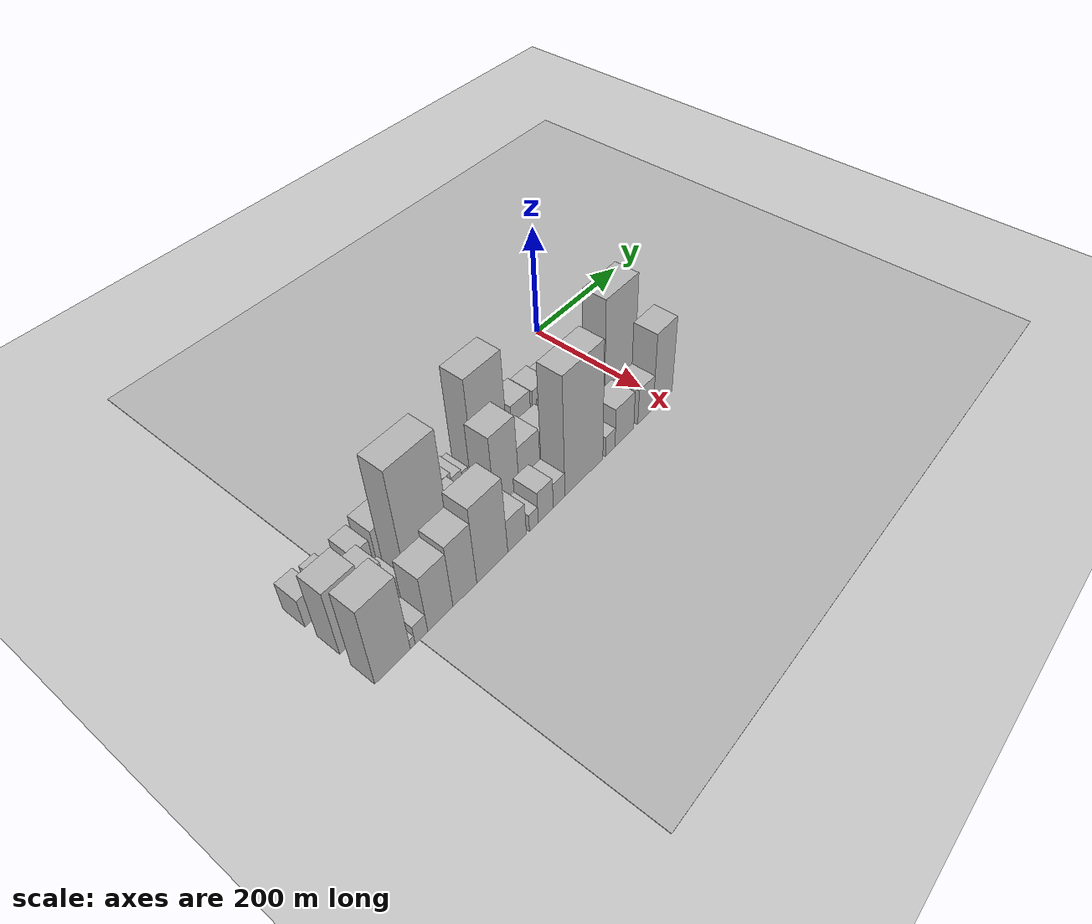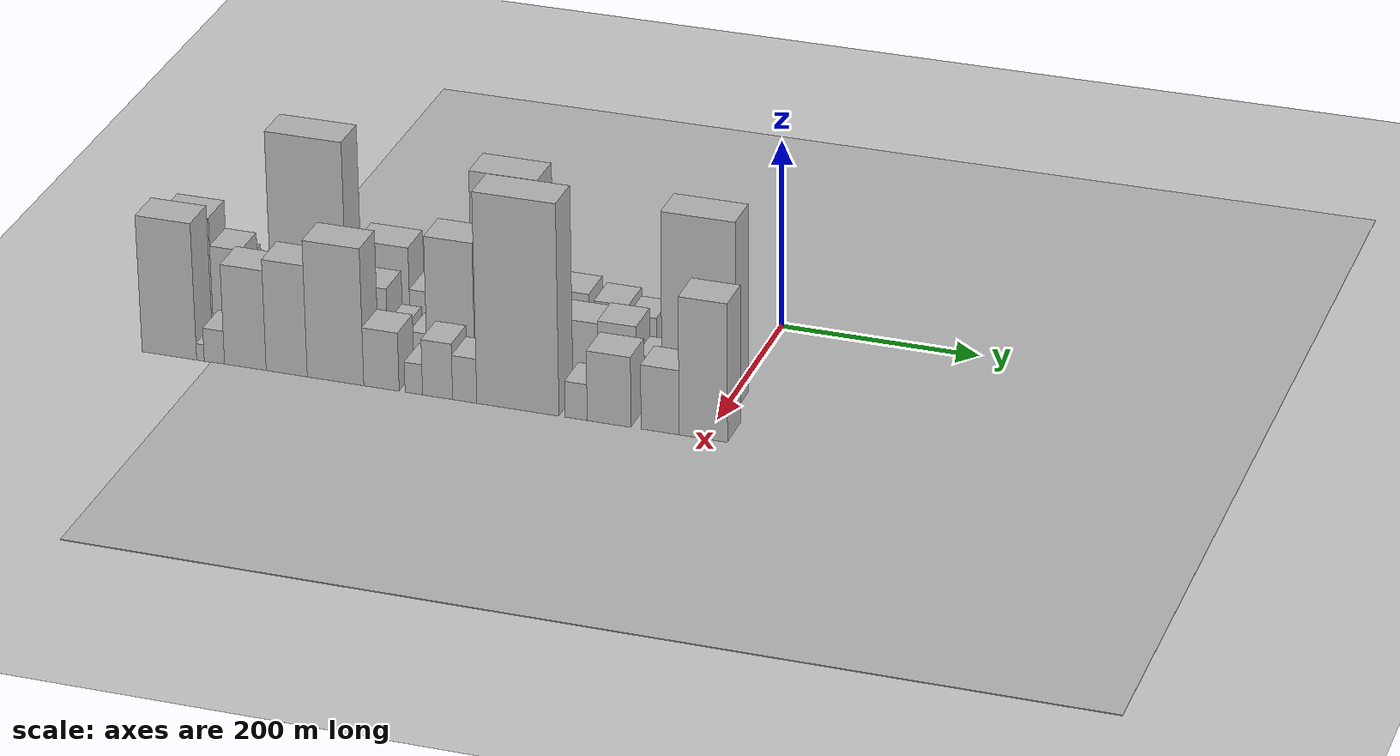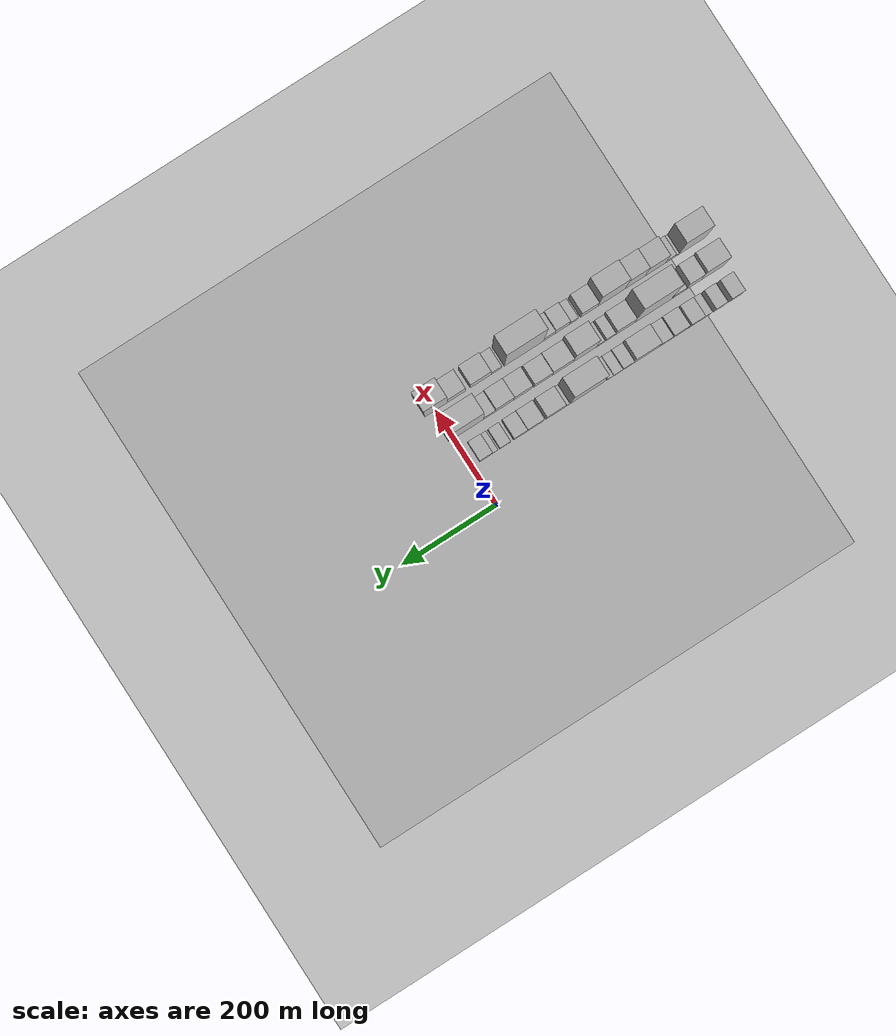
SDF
<sdf version="1.6">
 <world name="default">
  <include><name>ground_plane_1</name><uri>model://HANNAS_ground_plane</uri></include>
  <include>
   <name>ground_plane_2</name>
   <uri>model://HANNAS_ground_plane</uri>
   <pose>100 0 0  0 0 0</pose>
  </include>
  <model name="building_1">
   <static>1</static>
   <pose>100.0000 -558.0019 0 0.000000 0.000000 0.000000</pose>
   <link name="link">
    <pose>0 0 27.00 0 0 0</pose>
    <collision name="collision"><geometry><box><size>40.0000 27.9962 54.0000</size></box></geometry></collision>
    <visual name="visual">
     <cast_shadows>0</cast_shadows>
     <geometry><box><size>40.0000 27.9962 54.0000</size></box></geometry>
     <material>
      <script>
       <uri>model://HANNAS_wall/materials/scripts</uri>
       <uri>model://HANNAS_wall/materials/textures</uri>
       <name>vrc/HANNAS_wall</name>
      </script>
     </material>
    </visual>
   </link>
  </model>
  <model name="building_2">
   <static>1</static>
   <pose>100.0000 -523.8608 0 0.000000 0.000000 0.000000</pose>
   <link name="link">
    <pose>0 0 24.00 0 0 0</pose>
    <collision name="collision"><geometry><box><size>40.0000 24.2860 48.0000</size></box></geometry></collision>
    <visual name="visual">
     <cast_shadows>0</cast_shadows>
     <geometry><box><size>40.0000 24.2860 48.0000</size></box></geometry>
     <material>
      <script>
       <uri>model://HANNAS_wall/materials/scripts</uri>
       <uri>model://HANNAS_wall/materials/textures</uri>
       <name>vrc/HANNAS_wall</name>
      </script>
     </material>
    </visual>
   </link>
  </model>
  <model name="building_3">
   <static>1</static>
   <pose>100.0000 -497.3234 0 0.000000 0.000000 0.000000</pose>
   <link name="link">
    <pose>0 0 16.50 0 0 0</pose>
    <collision name="collision"><geometry><box><size>40.0000 16.7890 33.0000</size></box></geometry></collision>
    <visual name="visual">
     <cast_shadows>0</cast_shadows>
     <geometry><box><size>40.0000 16.7890 33.0000</size></box></geometry>
     <material>
      <script>
       <uri>model://HANNAS_wall/materials/scripts</uri>
       <uri>model://HANNAS_wall/materials/textures</uri>
       <name>vrc/HANNAS_wall</name>
      </script>
     </material>
    </visual>
   </link>
  </model>
  <model name="building_4">
   <static>1</static>
   <pose>100.0000 -474.6783 0 0.000000 0.000000 0.000000</pose>
   <link name="link">
    <pose>0 0 25.50 0 0 0</pose>
    <collision name="collision"><geometry><box><size>40.0000 28.5010 51.0000</size></box></geometry></collision>
    <visual name="visual">
     <cast_shadows>0</cast_shadows>
     <geometry><box><size>40.0000 28.5010 51.0000</size></box></geometry>
     <material>
      <script>
       <uri>model://HANNAS_wall/materials/scripts</uri>
       <uri>model://HANNAS_wall/materials/textures</uri>
       <name>vrc/HANNAS_wall</name>
      </script>
     </material>
    </visual>
   </link>
  </model>
  <model name="building_5">
   <static>1</static>
   <pose>100.0000 -438.8841 0 0.000000 0.000000 0.000000</pose>
   <link name="link">
    <pose>0 0 31.50 0 0 0</pose>
    <collision name="collision"><geometry><box><size>40.0000 33.0875 63.0000</size></box></geometry></collision>
    <visual name="visual">
     <cast_shadows>0</cast_shadows>
     <geometry><box><size>40.0000 33.0875 63.0000</size></box></geometry>
     <material>
      <script>
       <uri>model://HANNAS_wall/materials/scripts</uri>
       <uri>model://HANNAS_wall/materials/textures</uri>
       <name>vrc/HANNAS_wall</name>
      </script>
     </material>
    </visual>
   </link>
  </model>
  <model name="building_6">
   <static>1</static>
   <pose>100.0000 -408.1292 0 0.000000 0.000000 0.000000</pose>
   <link name="link">
    <pose>0 0 24.00 0 0 0</pose>
    <collision name="collision"><geometry><box><size>40.0000 28.4222 48.0000</size></box></geometry></collision>
    <visual name="visual">
     <cast_shadows>0</cast_shadows>
     <geometry><box><size>40.0000 28.4222 48.0000</size></box></geometry>
     <material>
      <script>
       <uri>model://HANNAS_wall/materials/scripts</uri>
       <uri>model://HANNAS_wall/materials/textures</uri>
       <name>vrc/HANNAS_wall</name>
      </script>
     </material>
    </visual>
   </link>
  </model>
  <model name="building_7">
   <static>1</static>
   <pose>100.0000 -367.4605 0 0.000000 0.000000 0.000000</pose>
   <link name="link">
    <pose>0 0 45.00 0 0 0</pose>
    <collision name="collision"><geometry><box><size>40.0000 52.9153 90.0000</size></box></geometry></collision>
    <visual name="visual">
     <cast_shadows>0</cast_shadows>
     <geometry><box><size>40.0000 52.9153 90.0000</size></box></geometry>
     <material>
      <script>
       <uri>model://HANNAS_wall/materials/scripts</uri>
       <uri>model://HANNAS_wall/materials/textures</uri>
       <name>vrc/HANNAS_wall</name>
      </script>
     </material>
    </visual>
   </link>
  </model>
  <model name="building_8">
   <static>1</static>
   <pose>100.0000 -329.2412 0 0.000000 0.000000 0.000000</pose>
   <link name="link">
    <pose>0 0 22.50 0 0 0</pose>
    <collision name="collision"><geometry><box><size>40.0000 23.5232 45.0000</size></box></geometry></collision>
    <visual name="visual">
     <cast_shadows>0</cast_shadows>
     <geometry><box><size>40.0000 23.5232 45.0000</size></box></geometry>
     <material>
      <script>
       <uri>model://HANNAS_wall/materials/scripts</uri>
       <uri>model://HANNAS_wall/materials/textures</uri>
       <name>vrc/HANNAS_wall</name>
      </script>
     </material>
    </visual>
   </link>
  </model>
  <model name="building_9">
   <static>1</static>
   <pose>100.0000 -307.7043 0 0.000000 0.000000 0.000000</pose>
   <link name="link">
    <pose>0 0 16.50 0 0 0</pose>
    <collision name="collision"><geometry><box><size>40.0000 19.5506 33.0000</size></box></geometry></collision>
    <visual name="visual">
     <cast_shadows>0</cast_shadows>
     <geometry><box><size>40.0000 19.5506 33.0000</size></box></geometry>
     <material>
      <script>
       <uri>model://HANNAS_wall/materials/scripts</uri>
       <uri>model://HANNAS_wall/materials/textures</uri>
       <name>vrc/HANNAS_wall</name>
      </script>
     </material>
    </visual>
   </link>
  </model>
  <model name="building_10">
   <static>1</static>
   <pose>100.0000 -291.6246 0 0.000000 0.000000 0.000000</pose>
   <link name="link">
    <pose>0 0 13.50 0 0 0</pose>
    <collision name="collision"><geometry><box><size>40.0000 12.6088 27.0000</size></box></geometry></collision>
    <visual name="visual">
     <cast_shadows>0</cast_shadows>
     <geometry><box><size>40.0000 12.6088 27.0000</size></box></geometry>
     <material>
      <script>
       <uri>model://HANNAS_wall/materials/scripts</uri>
       <uri>model://HANNAS_wall/materials/textures</uri>
       <name>vrc/HANNAS_wall</name>
      </script>
     </material>
    </visual>
   </link>
  </model>
  <model name="building_11">
   <static>1</static>
   <pose>100.0000 -241.5923 0 0.000000 0.000000 0.000000</pose>
   <link name="link">
    <pose>0 0 91.50 0 0 0</pose>
    <collision name="collision"><geometry><box><size>40.0000 69.4558 183.0000</size></box></geometry></collision>
    <visual name="visual">
     <cast_shadows>0</cast_shadows>
     <geometry><box><size>40.0000 69.4558 183.0000</size></box></geometry>
     <material>
      <script>
       <uri>model://HANNAS_wall/materials/scripts</uri>
       <uri>model://HANNAS_wall/materials/textures</uri>
       <name>vrc/HANNAS_wall</name>
      </script>
     </material>
    </visual>
   </link>
  </model>
  <model name="building_12">
   <static>1</static>
   <pose>100.0000 -203.6578 0 0.000000 0.000000 0.000000</pose>
   <link name="link">
    <pose>0 0 7.50 0 0 0</pose>
    <collision name="collision"><geometry><box><size>40.0000 6.4133 15.0000</size></box></geometry></collision>
    <visual name="visual">
     <cast_shadows>0</cast_shadows>
     <geometry><box><size>40.0000 6.4133 15.0000</size></box></geometry>
     <material>
      <script>
       <uri>model://HANNAS_wall/materials/scripts</uri>
       <uri>model://HANNAS_wall/materials/textures</uri>
       <name>vrc/HANNAS_wall</name>
      </script>
     </material>
    </visual>
   </link>
  </model>
  <model name="building_13">
   <static>1</static>
   <pose>100.0000 -176.4367 0 0.000000 0.000000 0.000000</pose>
   <link name="link">
    <pose>0 0 34.50 0 0 0</pose>
    <collision name="collision"><geometry><box><size>40.0000 40.0288 69.0000</size></box></geometry></collision>
    <visual name="visual">
     <cast_shadows>0</cast_shadows>
     <geometry><box><size>40.0000 40.0288 69.0000</size></box></geometry>
     <material>
      <script>
       <uri>model://HANNAS_wall/materials/scripts</uri>
       <uri>model://HANNAS_wall/materials/textures</uri>
       <name>vrc/HANNAS_wall</name>
      </script>
     </material>
    </visual>
   </link>
  </model>
  <model name="building_14">
   <static>1</static>
   <pose>100.0000 -134.0213 0 0.000000 0.000000 0.000000</pose>
   <link name="link">
    <pose>0 0 31.50 0 0 0</pose>
    <collision name="collision"><geometry><box><size>40.0000 34.8020 63.0000</size></box></geometry></collision>
    <visual name="visual">
     <cast_shadows>0</cast_shadows>
     <geometry><box><size>40.0000 34.8020 63.0000</size></box></geometry>
     <material>
      <script>
       <uri>model://HANNAS_wall/materials/scripts</uri>
       <uri>model://HANNAS_wall/materials/textures</uri>
       <name>vrc/HANNAS_wall</name>
      </script>
     </material>
    </visual>
   </link>
  </model>
  <model name="building_15">
   <static>1</static>
   <pose>100.0000 -102.4216 0 0.000000 0.000000 0.000000</pose>
   <link name="link">
    <pose>0 0 27.00 0 0 0</pose>
    <collision name="collision"><geometry><box><size>40.0000 28.3974 54.0000</size></box></geometry></collision>
    <visual name="visual">
     <cast_shadows>0</cast_shadows>
     <geometry><box><size>40.0000 28.3974 54.0000</size></box></geometry>
     <material>
      <script>
       <uri>model://HANNAS_wall/materials/scripts</uri>
       <uri>model://HANNAS_wall/materials/textures</uri>
       <name>vrc/HANNAS_wall</name>
      </script>
     </material>
    </visual>
   </link>
  </model>
  <model name="building_16">
   <static>1</static>
   <pose>100.0000 -69.9019 0 0.000000 0.000000 0.000000</pose>
   <link name="link">
    <pose>0 0 19.50 0 0 0</pose>
    <collision name="collision"><geometry><box><size>40.0000 22.6419 39.0000</size></box></geometry></collision>
    <visual name="visual">
     <cast_shadows>0</cast_shadows>
     <geometry><box><size>40.0000 22.6419 39.0000</size></box></geometry>
     <material>
      <script>
       <uri>model://HANNAS_wall/materials/scripts</uri>
       <uri>model://HANNAS_wall/materials/textures</uri>
       <name>vrc/HANNAS_wall</name>
      </script>
     </material>
    </visual>
   </link>
  </model>
  <model name="building_17">
   <static>1</static>
   <pose>100.0000 -48.9217 0 0.000000 0.000000 0.000000</pose>
   <link name="link">
    <pose>0 0 13.50 0 0 0</pose>
    <collision name="collision"><geometry><box><size>40.0000 11.3185 27.0000</size></box></geometry></collision>
    <visual name="visual">
     <cast_shadows>0</cast_shadows>
     <geometry><box><size>40.0000 11.3185 27.0000</size></box></geometry>
     <material>
      <script>
       <uri>model://HANNAS_wall/materials/scripts</uri>
       <uri>model://HANNAS_wall/materials/textures</uri>
       <name>vrc/HANNAS_wall</name>
      </script>
     </material>
    </visual>
   </link>
  </model>
  <model name="building_18">
   <static>1</static>
   <pose>100.0000 -29.7949 0 0.000000 0.000000 0.000000</pose>
   <link name="link">
    <pose>0 0 25.50 0 0 0</pose>
    <collision name="collision"><geometry><box><size>40.0000 26.9351 51.0000</size></box></geometry></collision>
    <visual name="visual">
     <cast_shadows>0</cast_shadows>
     <geometry><box><size>40.0000 26.9351 51.0000</size></box></geometry>
     <material>
      <script>
       <uri>model://HANNAS_wall/materials/scripts</uri>
       <uri>model://HANNAS_wall/materials/textures</uri>
       <name>vrc/HANNAS_wall</name>
      </script>
     </material>
    </visual>
   </link>
  </model>
  <model name="building_33">
   <static>1</static>
   <pose>160.0000 -546.7151 0 0.000000 0.000000 0.000000</pose>
   <link name="link">
    <pose>0 0 61.50 0 0 0</pose>
    <collision name="collision"><geometry><box><size>40.0000 48.5699 123.0000</size></box></geometry></collision>
    <visual name="visual">
     <cast_shadows>0</cast_shadows>
     <geometry><box><size>40.0000 48.5699 123.0000</size></box></geometry>
     <material>
      <script>
       <uri>model://HANNAS_wall/materials/scripts</uri>
       <uri>model://HANNAS_wall/materials/textures</uri>
       <name>vrc/HANNAS_wall</name>
      </script>
     </material>
    </visual>
   </link>
  </model>
  <model name="building_34">
   <static>1</static>
   <pose>160.0000 -506.3206 0 0.000000 0.000000 0.000000</pose>
   <link name="link">
    <pose>0 0 46.50 0 0 0</pose>
    <collision name="collision"><geometry><box><size>40.0000 32.2191 93.0000</size></box></geometry></collision>
    <visual name="visual">
     <cast_shadows>0</cast_shadows>
     <geometry><box><size>40.0000 32.2191 93.0000</size></box></geometry>
     <material>
      <script>
       <uri>model://HANNAS_wall/materials/scripts</uri>
       <uri>model://HANNAS_wall/materials/textures</uri>
       <name>vrc/HANNAS_wall</name>
      </script>
     </material>
    </visual>
   </link>
  </model>
  <model name="building_35">
   <static>1</static>
   <pose>160.0000 -477.7896 0 0.000000 0.000000 0.000000</pose>
   <link name="link">
    <pose>0 0 21.00 0 0 0</pose>
    <collision name="collision"><geometry><box><size>40.0000 24.8428 42.0000</size></box></geometry></collision>
    <visual name="visual">
     <cast_shadows>0</cast_shadows>
     <geometry><box><size>40.0000 24.8428 42.0000</size></box></geometry>
     <material>
      <script>
       <uri>model://HANNAS_wall/materials/scripts</uri>
       <uri>model://HANNAS_wall/materials/textures</uri>
       <name>vrc/HANNAS_wall</name>
      </script>
     </material>
    </visual>
   </link>
  </model>
  <model name="building_36">
   <static>1</static>
   <pose>160.0000 -421.2338 0 0.000000 0.000000 0.000000</pose>
   <link name="link">
    <pose>0 0 112.50 0 0 0</pose>
    <collision name="collision"><geometry><box><size>40.0000 78.2689 225.0000</size></box></geometry></collision>
    <visual name="visual">
     <cast_shadows>0</cast_shadows>
     <geometry><box><size>40.0000 78.2689 225.0000</size></box></geometry>
     <material>
      <script>
       <uri>model://HANNAS_wall/materials/scripts</uri>
       <uri>model://HANNAS_wall/materials/textures</uri>
       <name>vrc/HANNAS_wall</name>
      </script>
     </material>
    </visual>
   </link>
  </model>
  <model name="building_37">
   <static>1</static>
   <pose>160.0000 -361.5024 0 0.000000 0.000000 0.000000</pose>
   <link name="link">
    <pose>0 0 37.50 0 0 0</pose>
    <collision name="collision"><geometry><box><size>40.0000 41.1939 75.0000</size></box></geometry></collision>
    <visual name="visual">
     <cast_shadows>0</cast_shadows>
     <geometry><box><size>40.0000 41.1939 75.0000</size></box></geometry>
     <material>
      <script>
       <uri>model://HANNAS_wall/materials/scripts</uri>
       <uri>model://HANNAS_wall/materials/textures</uri>
       <name>vrc/HANNAS_wall</name>
      </script>
     </material>
    </visual>
   </link>
  </model>
  <model name="building_38">
   <static>1</static>
   <pose>160.0000 -331.0054 0 0.000000 0.000000 0.000000</pose>
   <link name="link">
    <pose>0 0 19.50 0 0 0</pose>
    <collision name="collision"><geometry><box><size>40.0000 19.8002 39.0000</size></box></geometry></collision>
    <visual name="visual">
     <cast_shadows>0</cast_shadows>
     <geometry><box><size>40.0000 19.8002 39.0000</size></box></geometry>
     <material>
      <script>
       <uri>model://HANNAS_wall/materials/scripts</uri>
       <uri>model://HANNAS_wall/materials/textures</uri>
       <name>vrc/HANNAS_wall</name>
      </script>
     </material>
    </visual>
   </link>
  </model>
  <model name="building_39">
   <static>1</static>
   <pose>160.0000 -309.5703 0 0.000000 0.000000 0.000000</pose>
   <link name="link">
    <pose>0 0 16.50 0 0 0</pose>
    <collision name="collision"><geometry><box><size>40.0000 17.0700 33.0000</size></box></geometry></collision>
    <visual name="visual">
     <cast_shadows>0</cast_shadows>
     <geometry><box><size>40.0000 17.0700 33.0000</size></box></geometry>
     <material>
      <script>
       <uri>model://HANNAS_wall/materials/scripts</uri>
       <uri>model://HANNAS_wall/materials/textures</uri>
       <name>vrc/HANNAS_wall</name>
      </script>
     </material>
    </visual>
   </link>
  </model>
  <model name="building_40">
   <static>1</static>
   <pose>160.0000 -276.5507 0 0.000000 0.000000 0.000000</pose>
   <link name="link">
    <pose>0 0 69.00 0 0 0</pose>
    <collision name="collision"><geometry><box><size>40.0000 48.9693 138.0000</size></box></geometry></collision>
    <visual name="visual">
     <cast_shadows>0</cast_shadows>
     <geometry><box><size>40.0000 48.9693 138.0000</size></box></geometry>
     <material>
      <script>
       <uri>model://HANNAS_wall/materials/scripts</uri>
       <uri>model://HANNAS_wall/materials/textures</uri>
       <name>vrc/HANNAS_wall</name>
      </script>
     </material>
    </visual>
   </link>
  </model>
  <model name="building_41">
   <static>1</static>
   <pose>160.0000 -230.0866 0 0.000000 0.000000 0.000000</pose>
   <link name="link">
    <pose>0 0 37.50 0 0 0</pose>
    <collision name="collision"><geometry><box><size>40.0000 43.9590 75.0000</size></box></geometry></collision>
    <visual name="visual">
     <cast_shadows>0</cast_shadows>
     <geometry><box><size>40.0000 43.9590 75.0000</size></box></geometry>
     <material>
      <script>
       <uri>model://HANNAS_wall/materials/scripts</uri>
       <uri>model://HANNAS_wall/materials/textures</uri>
       <name>vrc/HANNAS_wall</name>
      </script>
     </material>
    </visual>
   </link>
  </model>
  <model name="building_42">
   <static>1</static>
   <pose>160.0000 -188.6603 0 0.000000 0.000000 0.000000</pose>
   <link name="link">
    <pose>0 0 33.00 0 0 0</pose>
    <collision name="collision"><geometry><box><size>40.0000 38.8935 66.0000</size></box></geometry></collision>
    <visual name="visual">
     <cast_shadows>0</cast_shadows>
     <geometry><box><size>40.0000 38.8935 66.0000</size></box></geometry>
     <material>
      <script>
       <uri>model://HANNAS_wall/materials/scripts</uri>
       <uri>model://HANNAS_wall/materials/textures</uri>
       <name>vrc/HANNAS_wall</name>
      </script>
     </material>
    </visual>
   </link>
  </model>
  <model name="building_43">
   <static>1</static>
   <pose>160.0000 -146.0677 0 0.000000 0.000000 0.000000</pose>
   <link name="link">
    <pose>0 0 36.00 0 0 0</pose>
    <collision name="collision"><geometry><box><size>40.0000 38.2918 72.0000</size></box></geometry></collision>
    <visual name="visual">
     <cast_shadows>0</cast_shadows>
     <geometry><box><size>40.0000 38.2918 72.0000</size></box></geometry>
     <material>
      <script>
       <uri>model://HANNAS_wall/materials/scripts</uri>
       <uri>model://HANNAS_wall/materials/textures</uri>
       <name>vrc/HANNAS_wall</name>
      </script>
     </material>
    </visual>
   </link>
  </model>
  <model name="building_44">
   <static>1</static>
   <pose>160.0000 -107.5160 0 0.000000 0.000000 0.000000</pose>
   <link name="link">
    <pose>0 0 37.50 0 0 0</pose>
    <collision name="collision"><geometry><box><size>40.0000 38.8116 75.0000</size></box></geometry></collision>
    <visual name="visual">
     <cast_shadows>0</cast_shadows>
     <geometry><box><size>40.0000 38.8116 75.0000</size></box></geometry>
     <material>
      <script>
       <uri>model://HANNAS_wall/materials/scripts</uri>
       <uri>model://HANNAS_wall/materials/textures</uri>
       <name>vrc/HANNAS_wall</name>
      </script>
     </material>
    </visual>
   </link>
  </model>
  <model name="building_45">
   <static>1</static>
   <pose>160.0000 -75.4358 0 0.000000 0.000000 0.000000</pose>
   <link name="link">
    <pose>0 0 22.50 0 0 0</pose>
    <collision name="collision"><geometry><box><size>40.0000 25.3489 45.0000</size></box></geometry></collision>
    <visual name="visual">
     <cast_shadows>0</cast_shadows>
     <geometry><box><size>40.0000 25.3489 45.0000</size></box></geometry>
     <material>
      <script>
       <uri>model://HANNAS_wall/materials/scripts</uri>
       <uri>model://HANNAS_wall/materials/textures</uri>
       <name>vrc/HANNAS_wall</name>
      </script>
     </material>
    </visual>
   </link>
  </model>
  <model name="building_46">
   <static>1</static>
   <pose>160.0000 -26.0737 0 0.000000 0.000000 0.000000</pose>
   <link name="link">
    <pose>0 0 100.50 0 0 0</pose>
    <collision name="collision"><geometry><box><size>40.0000 73.3753 201.0000</size></box></geometry></collision>
    <visual name="visual">
     <cast_shadows>0</cast_shadows>
     <geometry><box><size>40.0000 73.3753 201.0000</size></box></geometry>
     <material>
      <script>
       <uri>model://HANNAS_wall/materials/scripts</uri>
       <uri>model://HANNAS_wall/materials/textures</uri>
       <name>vrc/HANNAS_wall</name>
      </script>
     </material>
    </visual>
   </link>
  </model>
  <model name="building_62">
   <static>1</static>
   <pose>220.0000 -543.6486 0 0.000000 0.000000 0.000000</pose>
   <link name="link">
    <pose>0 0 73.50 0 0 0</pose>
    <collision name="collision"><geometry><box><size>40.0000 56.7028 147.0000</size></box></geometry></collision>
    <visual name="visual">
     <cast_shadows>0</cast_shadows>
     <geometry><box><size>40.0000 56.7028 147.0000</size></box></geometry>
     <material>
      <script>
       <uri>model://HANNAS_wall/materials/scripts</uri>
       <uri>model://HANNAS_wall/materials/textures</uri>
       <name>vrc/HANNAS_wall</name>
      </script>
     </material>
    </visual>
   </link>
  </model>
  <model name="building_63">
   <static>1</static>
   <pose>220.0000 -511.3603 0 0.000000 0.000000 0.000000</pose>
   <link name="link">
    <pose>0 0 9.00 0 0 0</pose>
    <collision name="collision"><geometry><box><size>40.0000 7.8737 18.0000</size></box></geometry></collision>
    <visual name="visual">
     <cast_shadows>0</cast_shadows>
     <geometry><box><size>40.0000 7.8737 18.0000</size></box></geometry>
     <material>
      <script>
       <uri>model://HANNAS_wall/materials/scripts</uri>
       <uri>model://HANNAS_wall/materials/textures</uri>
       <name>vrc/HANNAS_wall</name>
      </script>
     </material>
    </visual>
   </link>
  </model>
  <model name="building_64">
   <static>1</static>
   <pose>220.0000 -496.9054 0 0.000000 0.000000 0.000000</pose>
   <link name="link">
    <pose>0 0 18.00 0 0 0</pose>
    <collision name="collision"><geometry><box><size>40.0000 21.0362 36.0000</size></box></geometry></collision>
    <visual name="visual">
     <cast_shadows>0</cast_shadows>
     <geometry><box><size>40.0000 21.0362 36.0000</size></box></geometry>
     <material>
      <script>
       <uri>model://HANNAS_wall/materials/scripts</uri>
       <uri>model://HANNAS_wall/materials/textures</uri>
       <name>vrc/HANNAS_wall</name>
      </script>
     </material>
    </visual>
   </link>
  </model>
  <model name="building_65">
   <static>1</static>
   <pose>220.0000 -464.8464 0 0.000000 0.000000 0.000000</pose>
   <link name="link">
    <pose>0 0 54.00 0 0 0</pose>
    <collision name="collision"><geometry><box><size>40.0000 43.0817 108.0000</size></box></geometry></collision>
    <visual name="visual">
     <cast_shadows>0</cast_shadows>
     <geometry><box><size>40.0000 43.0817 108.0000</size></box></geometry>
     <material>
      <script>
       <uri>model://HANNAS_wall/materials/scripts</uri>
       <uri>model://HANNAS_wall/materials/textures</uri>
       <name>vrc/HANNAS_wall</name>
      </script>
     </material>
    </visual>
   </link>
  </model>
  <model name="building_66">
   <static>1</static>
   <pose>220.0000 -422.1465 0 0.000000 0.000000 0.000000</pose>
   <link name="link">
    <pose>0 0 60.00 0 0 0</pose>
    <collision name="collision"><geometry><box><size>40.0000 42.3180 120.0000</size></box></geometry></collision>
    <visual name="visual">
     <cast_shadows>0</cast_shadows>
     <geometry><box><size>40.0000 42.3180 120.0000</size></box></geometry>
     <material>
      <script>
       <uri>model://HANNAS_wall/materials/scripts</uri>
       <uri>model://HANNAS_wall/materials/textures</uri>
       <name>vrc/HANNAS_wall</name>
      </script>
     </material>
    </visual>
   </link>
  </model>
  <model name="building_67">
   <static>1</static>
   <pose>220.0000 -372.0270 0 0.000000 0.000000 0.000000</pose>
   <link name="link">
    <pose>0 0 73.50 0 0 0</pose>
    <collision name="collision"><geometry><box><size>40.0000 57.9211 147.0000</size></box></geometry></collision>
    <visual name="visual">
     <cast_shadows>0</cast_shadows>
     <geometry><box><size>40.0000 57.9211 147.0000</size></box></geometry>
     <material>
      <script>
       <uri>model://HANNAS_wall/materials/scripts</uri>
       <uri>model://HANNAS_wall/materials/textures</uri>
       <name>vrc/HANNAS_wall</name>
      </script>
     </material>
    </visual>
   </link>
  </model>
  <model name="building_68">
   <static>1</static>
   <pose>220.0000 -325.0132 0 0.000000 0.000000 0.000000</pose>
   <link name="link">
    <pose>0 0 31.50 0 0 0</pose>
    <collision name="collision"><geometry><box><size>40.0000 36.1065 63.0000</size></box></geometry></collision>
    <visual name="visual">
     <cast_shadows>0</cast_shadows>
     <geometry><box><size>40.0000 36.1065 63.0000</size></box></geometry>
     <material>
      <script>
       <uri>model://HANNAS_wall/materials/scripts</uri>
       <uri>model://HANNAS_wall/materials/textures</uri>
       <name>vrc/HANNAS_wall</name>
      </script>
     </material>
    </visual>
   </link>
  </model>
  <model name="building_69">
   <static>1</static>
   <pose>220.0000 -292.0616 0 0.000000 0.000000 0.000000</pose>
   <link name="link">
    <pose>0 0 16.50 0 0 0</pose>
    <collision name="collision"><geometry><box><size>40.0000 17.7966 33.0000</size></box></geometry></collision>
    <visual name="visual">
     <cast_shadows>0</cast_shadows>
     <geometry><box><size>40.0000 17.7966 33.0000</size></box></geometry>
     <material>
      <script>
       <uri>model://HANNAS_wall/materials/scripts</uri>
       <uri>model://HANNAS_wall/materials/textures</uri>
       <name>vrc/HANNAS_wall</name>
      </script>
     </material>
    </visual>
   </link>
  </model>
  <model name="building_70">
   <static>1</static>
   <pose>220.0000 -267.9051 0 0.000000 0.000000 0.000000</pose>
   <link name="link">
    <pose>0 0 30.00 0 0 0</pose>
    <collision name="collision"><geometry><box><size>40.0000 30.5165 60.0000</size></box></geometry></collision>
    <visual name="visual">
     <cast_shadows>0</cast_shadows>
     <geometry><box><size>40.0000 30.5165 60.0000</size></box></geometry>
     <material>
      <script>
       <uri>model://HANNAS_wall/materials/scripts</uri>
       <uri>model://HANNAS_wall/materials/textures</uri>
       <name>vrc/HANNAS_wall</name>
      </script>
     </material>
    </visual>
   </link>
  </model>
  <model name="building_71">
   <static>1</static>
   <pose>220.0000 -240.4118 0 0.000000 0.000000 0.000000</pose>
   <link name="link">
    <pose>0 0 24.00 0 0 0</pose>
    <collision name="collision"><geometry><box><size>40.0000 24.4700 48.0000</size></box></geometry></collision>
    <visual name="visual">
     <cast_shadows>0</cast_shadows>
     <geometry><box><size>40.0000 24.4700 48.0000</size></box></geometry>
     <material>
      <script>
       <uri>model://HANNAS_wall/materials/scripts</uri>
       <uri>model://HANNAS_wall/materials/textures</uri>
       <name>vrc/HANNAS_wall</name>
      </script>
     </material>
    </visual>
   </link>
  </model>
  <model name="building_72">
   <static>1</static>
   <pose>220.0000 -186.7608 0 0.000000 0.000000 0.000000</pose>
   <link name="link">
    <pose>0 0 112.50 0 0 0</pose>
    <collision name="collision"><geometry><box><size>40.0000 82.8322 225.0000</size></box></geometry></collision>
    <visual name="visual">
     <cast_shadows>0</cast_shadows>
     <geometry><box><size>40.0000 82.8322 225.0000</size></box></geometry>
     <material>
      <script>
       <uri>model://HANNAS_wall/materials/scripts</uri>
       <uri>model://HANNAS_wall/materials/textures</uri>
       <name>vrc/HANNAS_wall</name>
      </script>
     </material>
    </visual>
   </link>
  </model>
  <model name="building_73">
   <static>1</static>
   <pose>220.0000 -128.2399 0 0.000000 0.000000 0.000000</pose>
   <link name="link">
    <pose>0 0 19.50 0 0 0</pose>
    <collision name="collision"><geometry><box><size>40.0000 22.2095 39.0000</size></box></geometry></collision>
    <visual name="visual">
     <cast_shadows>0</cast_shadows>
     <geometry><box><size>40.0000 22.2095 39.0000</size></box></geometry>
     <material>
      <script>
       <uri>model://HANNAS_wall/materials/scripts</uri>
       <uri>model://HANNAS_wall/materials/textures</uri>
       <name>vrc/HANNAS_wall</name>
      </script>
     </material>
    </visual>
   </link>
  </model>
  <model name="building_74">
   <static>1</static>
   <pose>220.0000 -95.2486 0 0.000000 0.000000 0.000000</pose>
   <link name="link">
    <pose>0 0 37.50 0 0 0</pose>
    <collision name="collision"><geometry><box><size>40.0000 43.7731 75.0000</size></box></geometry></collision>
    <visual name="visual">
     <cast_shadows>0</cast_shadows>
     <geometry><box><size>40.0000 43.7731 75.0000</size></box></geometry>
     <material>
      <script>
       <uri>model://HANNAS_wall/materials/scripts</uri>
       <uri>model://HANNAS_wall/materials/textures</uri>
       <name>vrc/HANNAS_wall</name>
      </script>
     </material>
    </visual>
   </link>
  </model>
  <model name="building_75">
   <static>1</static>
   <pose>220.0000 -44.5372 0 0.000000 0.000000 0.000000</pose>
   <link name="link">
    <pose>0 0 34.50 0 0 0</pose>
    <collision name="collision"><geometry><box><size>40.0000 37.6497 69.0000</size></box></geometry></collision>
    <visual name="visual">
     <cast_shadows>0</cast_shadows>
     <geometry><box><size>40.0000 37.6497 69.0000</size></box></geometry>
     <material>
      <script>
       <uri>model://HANNAS_wall/materials/scripts</uri>
       <uri>model://HANNAS_wall/materials/textures</uri>
       <name>vrc/HANNAS_wall</name>
      </script>
     </material>
    </visual>
   </link>
  </model>
  <model name="building_76">
   <static>1</static>
   <pose>220.0000 -1.7363 0 0.000000 0.000000 0.000000</pose>
   <link name="link">
    <pose>0 0 73.50 0 0 0</pose>
    <collision name="collision"><geometry><box><size>40.0000 47.9522 147.0000</size></box></geometry></collision>
    <visual name="visual">
     <cast_shadows>0</cast_shadows>
     <geometry><box><size>40.0000 47.9522 147.0000</size></box></geometry>
     <material>
      <script>
       <uri>model://HANNAS_wall/materials/scripts</uri>
       <uri>model://HANNAS_wall/materials/textures</uri>
       <name>vrc/HANNAS_wall</name>
      </script>
     </material>
    </visual>
   </link>
  </model>
 </world>
</sdf>
